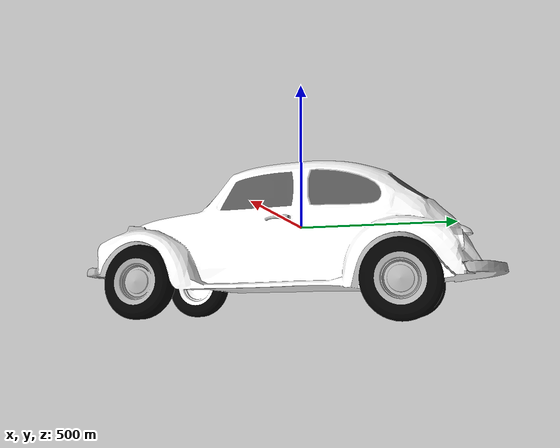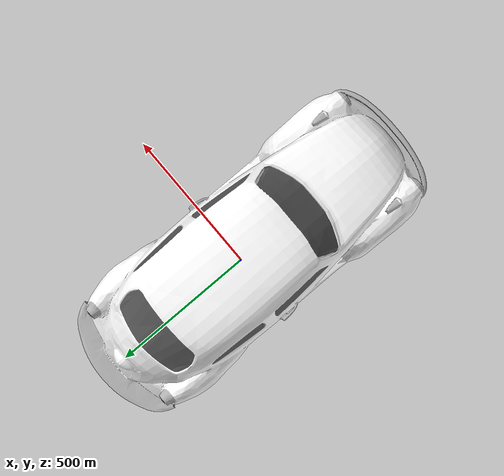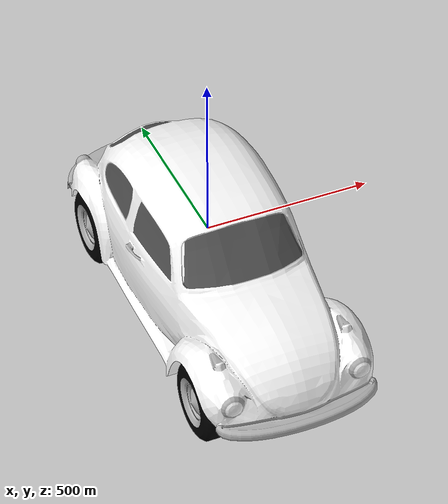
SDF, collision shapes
<?xml version='1.0'?>
<sdf version='1.6'>
  <model name='car2'>
    <link name='link_1'>
      <inertial>
        <mass>1500.0</mass>
        <pose>0 0 0.5 0 0 0</pose>
        <inertia>
          <ixx>2581.13354740</ixx>
          <ixy>0.0</ixy>
          <iyy>591.30846112</iyy>
          <ixz>0.0</ixz>
          <iyz>0.0</iyz>
          <izz>2681.95008628</izz>
        </inertia>
        <pose frame=''>0 0 0.5 0 -0 0</pose>
      </inertial>
      <pose frame=''>-0.225109 0.763245 -0.170343 0 -0 0</pose>
      <gravity>1</gravity>
      <self_collide>0</self_collide>
      <kinematic>0</kinematic>
      <enable_wind>0</enable_wind>
      <visual name='visual'>
        <pose frame=''>0 0 0.5 0 -0 0</pose>
        <geometry>
          <mesh>
            <uri>model://car2/meshes/car2.dae</uri>
            <scale>1 1 1</scale>
          </mesh>
        </geometry>
        <transparency>0</transparency>
        <cast_shadows>1</cast_shadows>
      </visual>
      <collision name='collision'>
        <laser_retro>0</laser_retro>
        <max_contacts>10</max_contacts>
        <pose frame=''>0 0 0.5 0 -0 0</pose>
        <geometry>
          <mesh>
            <uri>model://car2/meshes/car2.dae</uri>
            <scale>1 1 1</scale>
          </mesh>
        </geometry>
        <surface>
          <friction>
            <ode>
              <mu>1</mu>
              <mu2>1</mu2>
              <fdir1>0 0 0</fdir1>
              <slip1>0</slip1>
              <slip2>0</slip2>
            </ode>
            <torsional>
              <coefficient>1</coefficient>
              <patch_radius>0</patch_radius>
              <surface_radius>0</surface_radius>
              <use_patch_radius>1</use_patch_radius>
              <ode>
                <slip>0</slip>
              </ode>
            </torsional>
          </friction>
          <bounce>
            <restitution_coefficient>0</restitution_coefficient>
            <threshold>1e+06</threshold>
          </bounce>
          <contact>
            <collide_without_contact>0</collide_without_contact>
            <collide_without_contact_bitmask>1</collide_without_contact_bitmask>
            <collide_bitmask>1</collide_bitmask>
            <ode>
              <soft_cfm>0</soft_cfm>
              <soft_erp>0.2</soft_erp>
              <kp>1e+13</kp>
              <kd>1</kd>
              <max_vel>0.01</max_vel>
              <min_depth>0</min_depth>
            </ode>
            <bullet>
              <split_impulse>1</split_impulse>
              <split_impulse_penetration_threshold>-0.01</split_impulse_penetration_threshold>
              <soft_cfm>0</soft_cfm>
              <soft_erp>0.2</soft_erp>
              <kp>1e+13</kp>
              <kd>1</kd>
            </bullet>
          </contact>
        </surface>
      </collision>
    </link>
    <model name='car_wheel'>
      <link name='link'>
        <pose frame=''>0 0 0.21682 0 1.5707 0</pose>
        <inertial>
          <mass>12</mass>
          <inertia>
            <ixx>0.167005</ixx>
            <ixy>0</ixy>
            <ixz>0</ixz>
            <iyy>0.167005</iyy>
            <iyz>0</iyz>
            <izz>0.282065</izz>
          </inertia>
        </inertial>
        <collision name='collision'>
          <geometry>
            <cylinder>
              <radius>0.3</radius>
              <length>0.16116</length>
            </cylinder>
          </geometry>
          <surface>
            <friction>
              <ode>
                <mu>1</mu>
                <mu2>1</mu2>
                <fdir1>0 0 1</fdir1>
                <slip1>0</slip1>
                <slip2>0</slip2>
              </ode>
            </friction>
            <contact>
              <ode>
                <min_depth>0.005</min_depth>
                <kp>1e+08</kp>
              </ode>
            </contact>
          </surface>
        </collision>
        <visual name='visual'>
          <pose frame=''>0 0 -0.08058 0 -0 0</pose>
          <geometry>
            <mesh>
              <uri>model://car_wheel/meshes/car_wheel.dae</uri>
 		<scale>1.2 1.2 1.5</scale>
            </mesh>
          </geometry>
        </visual>
      </link>
      <pose frame=''>0.74933 -0.25583 -0.170343 0 0 -1.68543</pose>
    </model>
    <model name='car_wheel_0'>
      <link name='link'>
        <pose frame=''>0 0 0.21682 0 1.5707 0</pose>
        <inertial>
          <mass>12</mass>
          <inertia>
            <ixx>0.167005</ixx>
            <ixy>0</ixy>
            <ixz>0</ixz>
            <iyy>0.167005</iyy>
            <iyz>0</iyz>
            <izz>0.282065</izz>
          </inertia>
        </inertial>
        <collision name='collision'>
          <geometry>
            <cylinder>
              <radius>0.3</radius>
              <length>0.16116</length>
            </cylinder>
          </geometry>
          <surface>
            <friction>
              <ode>
                <mu>1</mu>
                <mu2>1</mu2>
                <fdir1>0 0 1</fdir1>
                <slip1>0</slip1>
                <slip2>0</slip2>
              </ode>
            </friction>
            <contact>
              <ode>
                <min_depth>0.005</min_depth>
                <kp>1e+08</kp>
              </ode>
            </contact>
          </surface>
        </collision>
        <visual name='visual'>
          <pose frame=''>0 0 -0.08058 0 -0 0</pose>
          <geometry>
            <mesh>
              <uri>model://car_wheel/meshes/car_wheel.dae</uri>
 		<scale>1.2 1.2 1.5</scale>
            </mesh>
          </geometry>
        </visual>
      </link>
      <pose frame=''>-1.65607 -0.274163 -0.170343 0 0 -1.6685</pose>
    </model>
    <model name='charge_oncar'>
      <link name='link_2'>
        <inertial>
          <mass>0.3</mass>
          <inertia>
            <ixx>0</ixx>
            <ixy>0</ixy>
            <ixz>0</ixz>
            <iyy>0</iyy>
            <iyz>0</iyz>
            <izz>0</izz>
          </inertia>
          <pose frame=''>0 0 0 0 -0 0</pose>
        </inertial>
        <pose frame=''>0 0 0 0 -0 0</pose>
        <gravity>1</gravity>
        <self_collide>0</self_collide>
        <kinematic>0</kinematic>
        <enable_wind>0</enable_wind>
        <visual name='visual'>
          <pose frame=''>-0.04 -0.04 0 0 -0 0</pose>
          <geometry>
            <mesh>
              <uri>model://charge_oncar/meshes/charge_oncar.dae</uri>
              <scale>1 1 1</scale>
            </mesh>
          </geometry>
          <material>
          <lighting>1</lighting>
          <script>
            <uri>file://media/materials/scripts/gazebo.material</uri>
            <name>Gazebo/Green</name>
          </script>
          <emissive>0 0 0 1</emissive>
        </material>
          <transparency>0</transparency>
          <cast_shadows>1</cast_shadows>
        </visual>
        <collision name='collision'>
          <laser_retro>0</laser_retro>
          <max_contacts>10</max_contacts>
          <pose frame=''>-0.04 -0.04 0 0 -0 0</pose>
          <geometry>
            <mesh>
              <uri>model://charge_oncar/meshes/charge_oncar.dae</uri>
              <scale>1 1 1</scale>
            </mesh>
          </geometry>
          <surface>
            <friction>
              <ode>
                <mu>1</mu>
                <mu2>1</mu2>
                <fdir1>0 0 0</fdir1>
                <slip1>0</slip1>
                <slip2>0</slip2>
              </ode>
              <torsional>
                <coefficient>1</coefficient>
                <patch_radius>0</patch_radius>
                <surface_radius>0</surface_radius>
                <use_patch_radius>1</use_patch_radius>
                <ode>
                  <slip>0</slip>
                </ode>
              </torsional>
            </friction>
            <bounce>
              <restitution_coefficient>0</restitution_coefficient>
              <threshold>1e+06</threshold>
            </bounce>
            <contact>
              <collide_without_contact>0</collide_without_contact>
              <collide_without_contact_bitmask>1</collide_without_contact_bitmask>
              <collide_bitmask>1</collide_bitmask>
              <ode>
                <soft_cfm>0</soft_cfm>
                <soft_erp>0.2</soft_erp>
                <kp>1e+13</kp>
                <kd>1</kd>
                <max_vel>0.01</max_vel>
                <min_depth>0</min_depth>
              </ode>
              <bullet>
                <split_impulse>1</split_impulse>
                <split_impulse_penetration_threshold>-0.01</split_impulse_penetration_threshold>
                <soft_cfm>0</soft_cfm>
                <soft_erp>0.2</soft_erp>
                <kp>1e+13</kp>
                <kd>1</kd>
              </bullet>
            </contact>
          </surface>
        </collision>
      </link>
      <static>0</static>
      <allow_auto_disable>1</allow_auto_disable>
      <pose frame=''>1.13185 -0.233251 0.511028 1.23883 -0 0</pose>
    </model>
    <joint name='link_1_JOINT_0' type='fixed'>
      <parent>link_1</parent>
      <child>car_wheel_0::link</child>
      <pose frame=''>0 0 0 0 -0 0</pose>
      <physics>
        <ode>
          <limit>
            <cfm>0</cfm>
            <erp>0.2</erp>
          </limit>
          <suspension>
            <cfm>0</cfm>
            <erp>0.2</erp>
          </suspension>
        </ode>
      </physics>
    </joint>
    <joint name='link_1_JOINT_1' type='fixed'>
      <parent>link_1</parent>
      <child>car_wheel::link</child>
      <pose frame=''>0 0 0 0 -0 0</pose>
      <physics>
        <ode>
          <limit>
            <cfm>0</cfm>
            <erp>0.2</erp>
          </limit>
          <suspension>
            <cfm>0</cfm>
            <erp>0.2</erp>
          </suspension>
        </ode>
      </physics>
    </joint>
    <joint name='link_1_JOINT_2' type='fixed'>
      <parent>link_1</parent>
      <child>charge_oncar::link_2</child>
      <pose frame=''>0 0 0 0 -0 0</pose>
      <physics>
        <ode>
          <limit>
            <cfm>0</cfm>
            <erp>0.2</erp>
          </limit>
          <suspension>
            <cfm>0</cfm>
            <erp>0.2</erp>
          </suspension>
        </ode>
      </physics>
    </joint>
    <static>0</static>
    <allow_auto_disable>1</allow_auto_disable>
  </model>
</sdf>
